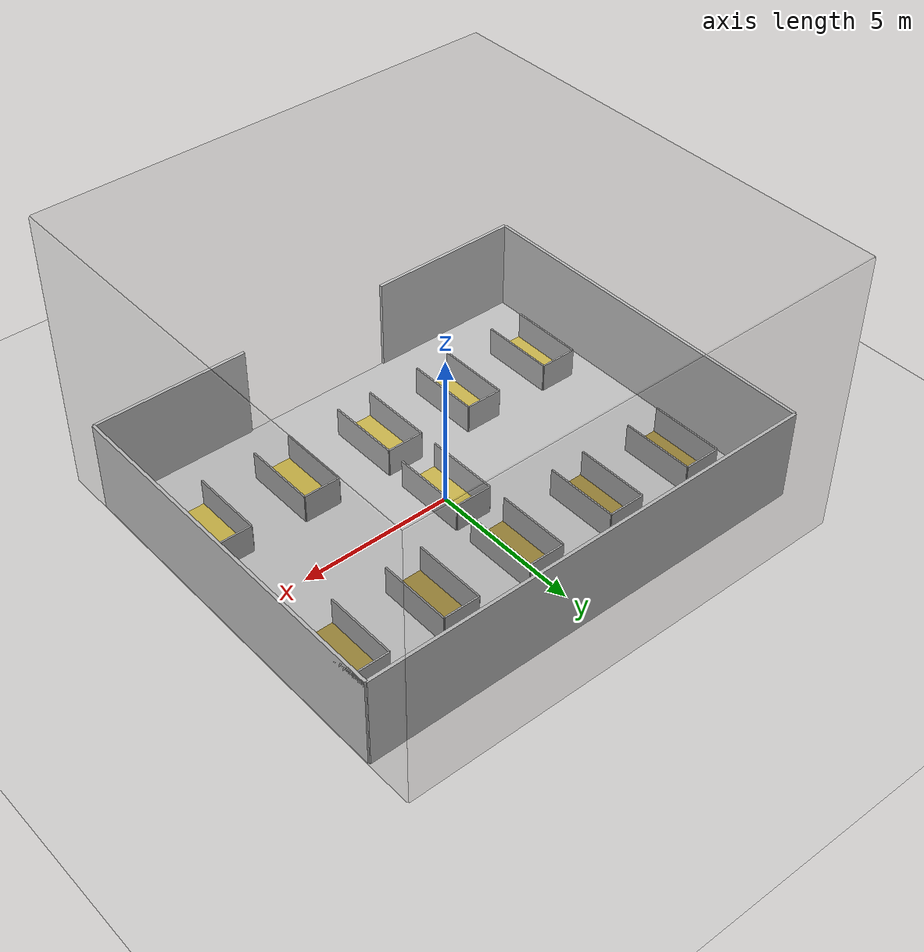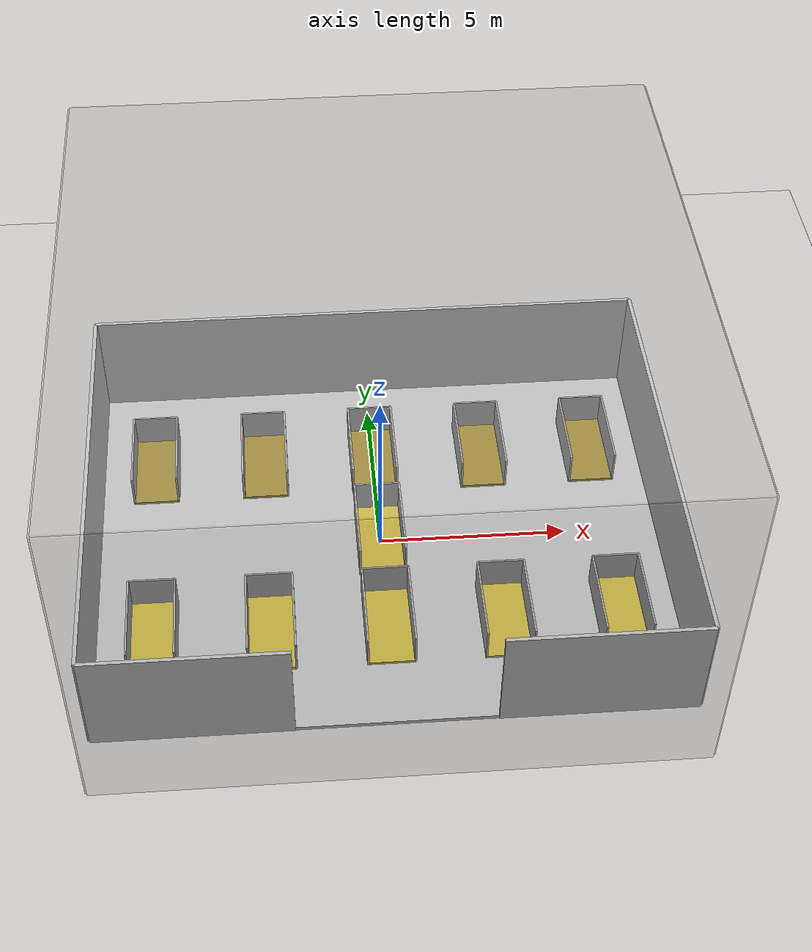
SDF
<?xml version="1.0" ?>
<sdf version="1.8">
  <world name="default">
    <!-- Basic settings and plugins -->
        <physics name="1ms" type="ignored">
            <max_step_size>0.001</max_step_size>
            <real_time_factor>1.0</real_time_factor>

        </physics>
        <plugin
        filename="gz-sim-buoyancy-system"
        name="gz::sim::systems::Buoyancy">
        <uniform_fluid_density>0</uniform_fluid_density>
        </plugin>

        <plugin
            filename="gz-sim-physics-system"
            name="gz::sim::systems::Physics">
        </plugin>
        <plugin
            filename="gz-sim-user-commands-system"
            name="gz::sim::systems::UserCommands">
        </plugin>
        <plugin
            filename="gz-sim-scene-broadcaster-system"
            name="gz::sim::systems::SceneBroadcaster">
        </plugin>
        <plugin
            filename="gz-sim-imu-system"
            name="gz::sim::systems::Imu">
        </plugin>
        <plugin
            filename="gz-sim-sensors-system"
            name="gz::sim::systems::Sensors">
            <render_engine>ogre2</render_engine>
        </plugin>

        <plugin
            filename="gz-sim-buoyancy-system"
            name="gz::sim::systems::Buoyancy">
            <uniform_fluid_density>0</uniform_fluid_density>
        </plugin>
          <plugin
            filename="gz-sim-particle-emitter-system"
            name="gz::sim::systems::ParticleEmitter">
          </plugin>

        <plugin
            filename="gz-sim-contact-system"
            name="gz::sim::systems::Contact">
        </plugin>

        <gui fullscreen="0">

          <!-- 3D scene -->
          <plugin filename="MinimalScene" name="3D View">
            <gz-gui>
              <title>3D View</title>
              <property type="bool" key="showTitleBar">false</property>
              <property type="string" key="state">docked</property>
            </gz-gui>

            <engine>ogre2</engine>
            <scene>scene</scene>
            <ambient_light>0.4 0.4 0.4</ambient_light>
            <background_color>0.8 0.8 0.8</background_color>
            <camera_pose>-6 0 6 0 0.5 0</camera_pose>
            <camera_clip>
              <near>0.25</near>
              <far>25000</far>
            </camera_clip>
          </plugin>

          <!-- Plugins that add functionality to the scene -->
          <plugin filename="EntityContextMenuPlugin" name="Entity context menu">
            <gz-gui>
              <property key="state" type="string">floating</property>
              <property key="width" type="double">5</property>
              <property key="height" type="double">5</property>
              <property key="showTitleBar" type="bool">false</property>
            </gz-gui>
          </plugin>
          <plugin filename="GzSceneManager" name="Scene Manager">
            <gz-gui>
              <property key="resizable" type="bool">false</property>
              <property key="width" type="double">5</property>
              <property key="height" type="double">5</property>
              <property key="state" type="string">floating</property>
              <property key="showTitleBar" type="bool">false</property>
            </gz-gui>
          </plugin>
          <plugin filename="InteractiveViewControl" name="Interactive view control">
            <gz-gui>
              <property key="resizable" type="bool">false</property>
              <property key="width" type="double">5</property>
              <property key="height" type="double">5</property>
              <property key="state" type="string">floating</property>
              <property key="showTitleBar" type="bool">false</property>
            </gz-gui>
          </plugin>
          <plugin filename="CameraTracking" name="Camera Tracking">
            <gz-gui>
              <property key="resizable" type="bool">false</property>
              <property key="width" type="double">5</property>
              <property key="height" type="double">5</property>
              <property key="state" type="string">floating</property>
              <property key="showTitleBar" type="bool">false</property>
            </gz-gui>
          </plugin>
          <plugin filename="MarkerManager" name="Marker manager">
            <gz-gui>
              <property key="resizable" type="bool">false</property>
              <property key="width" type="double">5</property>
              <property key="height" type="double">5</property>
              <property key="state" type="string">floating</property>
              <property key="showTitleBar" type="bool">false</property>
            </gz-gui>
          </plugin>
          <plugin filename="SelectEntities" name="Select Entities">
            <gz-gui>
              <anchors target="Select entities">
                <line own="right" target="right"/>
                <line own="top" target="top"/>
              </anchors>
              <property key="resizable" type="bool">false</property>
              <property key="width" type="double">5</property>
              <property key="height" type="double">5</property>
              <property key="state" type="string">floating</property>
              <property key="showTitleBar" type="bool">false</property>
            </gz-gui>
          </plugin>
          <plugin filename="VisualizationCapabilities" name="Visualization Capabilities">
            <gz-gui>
              <property key="resizable" type="bool">false</property>
              <property key="width" type="double">5</property>
              <property key="height" type="double">5</property>
              <property key="state" type="string">floating</property>
              <property key="showTitleBar" type="bool">false</property>
            </gz-gui>
          </plugin>

          <plugin filename="Spawn" name="Spawn Entities">
            <gz-gui>
              <anchors target="Select entities">
                <line own="right" target="right"/>
                <line own="top" target="top"/>
              </anchors>
              <property key="resizable" type="bool">false</property>
              <property key="width" type="double">5</property>
              <property key="height" type="double">5</property>
              <property key="state" type="string">floating</property>
              <property key="showTitleBar" type="bool">false</property>
            </gz-gui>
          </plugin>

          <!-- World control -->
          <plugin filename="WorldControl" name="World control">
            <gz-gui>
              <title>World control</title>
              <property type="bool" key="showTitleBar">false</property>
              <property type="bool" key="resizable">false</property>
              <property type="double" key="height">72</property>
              <property type="double" key="width">121</property>
              <property type="double" key="z">1</property>

              <property type="string" key="state">floating</property>
              <anchors target="3D View">
                <line own="left" target="left"/>
                <line own="bottom" target="bottom"/>
              </anchors>
            </gz-gui>

            <play_pause>true</play_pause>
            <step>true</step>
            <start_paused>true</start_paused>
            <use_event>true</use_event>

          </plugin>

          <!-- World statistics -->
          <plugin filename="WorldStats" name="World stats">
            <gz-gui>
              <title>World stats</title>
              <property type="bool" key="showTitleBar">false</property>
              <property type="bool" key="resizable">false</property>
              <property type="double" key="height">110</property>
              <property type="double" key="width">290</property>
              <property type="double" key="z">1</property>

              <property type="string" key="state">floating</property>
              <anchors target="3D View">
                <line own="right" target="right"/>
                <line own="bottom" target="bottom"/>
              </anchors>
            </gz-gui>

            <sim_time>true</sim_time>
            <real_time>true</real_time>
            <real_time_factor>true</real_time_factor>
            <iterations>true</iterations>
          </plugin>

          <!-- Insert simple shapes -->
          <plugin filename="Shapes" name="Shapes">
            <gz-gui>
              <property key="resizable" type="bool">false</property>
              <property key="x" type="double">0</property>
              <property key="y" type="double">0</property>
              <property key="width" type="double">250</property>
              <property key="height" type="double">50</property>
              <property key="state" type="string">floating</property>
              <property key="showTitleBar" type="bool">false</property>
              <property key="cardBackground" type="string">#666666</property>
            </gz-gui>
          </plugin>

          <!-- Insert lights -->
          <plugin filename="Lights" name="Lights">
            <gz-gui>
              <property key="resizable" type="bool">false</property>
              <property key="x" type="double">250</property>
              <property key="y" type="double">0</property>
              <property key="width" type="double">150</property>
              <property key="height" type="double">50</property>
              <property key="state" type="string">floating</property>
              <property key="showTitleBar" type="bool">false</property>
              <property key="cardBackground" type="string">#666666</property>
            </gz-gui>
          </plugin>

          <!-- Translate / rotate -->
          <plugin filename="TransformControl" name="Transform control">
            <gz-gui>
              <property key="resizable" type="bool">false</property>
              <property key="x" type="double">0</property>
              <property key="y" type="double">50</property>
              <property key="width" type="double">250</property>
              <property key="height" type="double">50</property>
              <property key="state" type="string">floating</property>
              <property key="showTitleBar" type="bool">false</property>
              <property key="cardBackground" type="string">#777777</property>
            </gz-gui>
          </plugin>

          <!-- Inspector -->
          <plugin filename="ComponentInspector" name="Component inspector">
            <gz-gui>
              <property type="string" key="state">docked_collapsed</property>
            </gz-gui>
          </plugin>

          <!-- View angle -->
          <plugin filename="ViewAngle" name="View angle">
            <gz-gui>
              <property type="string" key="state">docked_collapsed</property>
            </gz-gui>
          </plugin>

            <!-- KeyPublisher plugin-->
            <plugin filename="KeyPublisher" name="Key Publisher"/>

        </gui>

        <!-- Lighting -->
        <light type="directional" name="sun">
            <cast_shadows>true</cast_shadows>
            <pose>0 0 10 0 0 0</pose>
            <diffuse>0.8 0.8 0.8 1</diffuse>
            <specular>0.2 0.2 0.2 1</specular>
            <attenuation>
                <range>1000</range>
                <constant>0.9</constant>
                <linear>0.01</linear>
                <quadratic>0.001</quadratic>
            </attenuation>
            <direction>-0.5 0.1 -0.9</direction>
        </light>

        <!-- Ground Plane -->
        <model name="ground_plane">
            <static>true</static>
            <link name="link">
                <collision name="collision">
                <geometry>
                    <plane>
                    <normal>0 0 1</normal>
                    </plane>
                </geometry>
                </collision>
                <visual name="visual">
                <geometry>
                    <plane>
                    <normal>0 0 1</normal>
                    <size>100 100</size>
                    </plane>
                </geometry>
                <material>
                    <ambient>0.8 0.8 0.8 1</ambient>
                    <diffuse>0.8 0.8 0.8 1</diffuse>
                    <specular>0.8 0.8 0.8 1</specular>
                </material>
                </visual>
            </link>
        </model>

        <!--WORLD BOUNDARIES-->

    <model name='boundary1'>
        <pose>0 7.5 1.5 0 0 0</pose> <!-- Top wall -->
        <static>true</static>
        <link name='body'>
            <visual name='body_visual'>
            <geometry>
                <box>
                <size>15 0.1 15</size> <!-- No change in size -->
                </box>
            </geometry>
            <material>
                <ambient>1 0.9 0.9 0.2</ambient>
                <diffuse>0.5 0.5 0.5 0.2</diffuse>
            </material>
            </visual>
            <collision name='body_collision'>
            <geometry>
                <box>
                <size>15 0.1 4</size> <!-- Ensure the size matches the visual -->
                </box>
            </geometry>
            </collision>
        </link>
        </model>
    <model name='boundary2'>
        <pose>0 -7.5 1.5 0 0 0</pose> <!-- Bottom wall -->
        <static>true</static>
        <link name='body'>
            <visual name='body_visual'>
            <geometry>
                <box>
                <size>15 0.1 15</size> <!-- No change in size -->
                </box>
            </geometry>
            <material>
                <ambient>1 0.9 0.9 0.2</ambient>
                <diffuse>0.5 0.5 0.5 0.2</diffuse>
            </material>
            </visual>
            <collision name='body_collision'>
            <geometry>
                <box>
                <size>15 0.1 4</size> <!-- Ensure the size matches the visual -->
                </box>
            </geometry>
            </collision>
        </link>
    </model>
    <model name='boundary3'>
        <pose>7.5 0 1.5 0 0 0</pose> <!-- Right wall (move further right) -->
        <static>true</static>
        <link name='body'>
            <visual name='body_visual'>
            <geometry>
                <box>
                <size>0.1 15 15</size>
                </box>
            </geometry>
            <material>
                <ambient>1 0.9 0.9 0.2</ambient>
                <diffuse>0.5 0.5 0.5 0.2</diffuse>
            </material>
            </visual>
            <collision name='body_collision'>
            <geometry>
                <box>
                <size>0.1 10 4</size>
                </box>
            </geometry>
            </collision>
        </link>
        </model>
    <model name='boundary4'>
        <pose>-7.5 0 1.5 0 0 0</pose> <!-- Left wall (move further left) -->
        <static>true</static>
        <link name='body'>
            <visual name='body_visual'>
            <geometry>
                <box>
                <size>0.1 15 15</size>
                </box>
            </geometry>
            <material>
                <ambient>1 0.9 0.9 0.2</ambient>
                <diffuse>0.5 0.5 0.5 0.2</diffuse>
            </material>
            </visual>
            <collision name='body_collision'>
            <geometry>
                <box>
                <size>0.1 10 4</size>
                </box>
            </geometry>
            </collision>
        </link>
    </model>

    <model name='ceiling'>
        <pose>0 0 9 0 0 0</pose> <!-- Position the ceiling above the walls -->
        <static>true</static>
        <link name='body'>
            <visual name='body_visual'>
            <geometry>
                <box>
                <size>15 15 0.1</size> <!-- Dimensions of the ceiling -->
                </box>
            </geometry>
            <material>
                <ambient>1 0.9 0.9 0.2</ambient>
                <diffuse>0.5 0.5 0.5 0.2</diffuse>
            </material>
            </visual>
            <collision name='body_collision'>
            <geometry>
                <box>
                <size>15 15 0.1</size> <!-- Ensure collision matches the visual -->
                </box>
            </geometry>
            </collision>
        </link>
    </model>

        <!--WORLD OBJECTS-->

    <!-- =========================
         Barn model (very simple)
         ========================= -->
    <model name="barn">
      <static>true</static>

      <!-- Barn floor: 15m x 12m concrete slab -->
      <link name="floor">
        <pose>0 0 0 0 0 0</pose>
        <collision name="floor_coll">
          <geometry>
            <box><size>15 12 0.1</size></box>
          </geometry>
          <surface>
            <friction>
              <ode>
                <mu>1.0</mu>
                <mu2>1.0</mu2>
              </ode>
            </friction>
          </surface>
        </collision>
        <visual name="floor_vis">
          <geometry>
            <box><size>15 12 0.1</size></box>
          </geometry>
          <material>
            <ambient>0.8 0.8 0.8 1</ambient>
            <diffuse>0.8 0.8 0.8 1</diffuse>
            <specular>0.1 0.1 0.1 1</specular>
            <emissive>0 0 0 1</emissive>
          </material>
        </visual>
      </link>

      <!-- Four simple walls (open ends for ventilation) -->
      <!-- West wall -->
      <link name="wall_w">
        <pose>-7.5 0 1.5 0 0 0</pose>
        <collision name="c">
          <geometry><box><size>0.1 12 3</size></box></geometry>
        </collision>
        <visual name="v">
          <geometry><box><size>0.1 12 3</size></box></geometry>
          <material>
            <ambient>0.8 0.8 0.8 1</ambient>
            <diffuse>0.8 0.8 0.8 1</diffuse>
            <specular>0.1 0.1 0.1 1</specular>
            <emissive>0 0 0 1</emissive>
          </material>
        </visual>
      </link>
      <!-- East wall -->
      <link name="wall_e">
        <pose>7.5 0 1.5 0 0 0</pose>
        <collision name="c">
          <geometry><box><size>0.1 12 3</size></box></geometry>
        </collision>
        <visual name="v">
          <geometry><box><size>0.1 12 3</size></box></geometry>
          <material>
            <ambient>0.8 0.8 0.8 1</ambient>
            <diffuse>0.8 0.8 0.8 1</diffuse>
            <specular>0.1 0.1 0.1 1</specular>
            <emissive>0 0 0 1</emissive>
          </material>
        </visual>
      </link>
      <!-- South wall with a large doorway gap (~5m) -->
      <model name="south_wall">
        <static>true</static>
        <!-- Left segment -->
        <link name="sw_left">
          <pose>-5  -6 1.5 0 0 0</pose>
          <collision name="c">
            <geometry><box><size>5 0.1 3</size></box></geometry>
          </collision>
          <visual name="v">
            <geometry><box><size>5 0.1 3</size></box></geometry>
            <material>
              <ambient>0.8 0.8 0.8 1</ambient>
              <diffuse>0.8 0.8 0.8 1</diffuse>
              <specular>0.1 0.1 0.1 1</specular>
              <emissive>0 0 0 1</emissive>
            </material>
          </visual>
        </link>
        <!-- Right segment -->
        <link name="sw_right">
          <pose> 5  -6 1.5 0 0 0</pose>
          <collision name="c">
            <geometry><box><size>5 0.1 3</size></box></geometry>
          </collision>
          <visual name="v">
            <geometry><box><size>5 0.1 3</size></box></geometry>
            <material>
              <ambient>0.8 0.8 0.8 1</ambient>
              <diffuse>0.8 0.8 0.8 1</diffuse>
              <specular>0.1 0.1 0.1 1</specular>
              <emissive>0 0 0 1</emissive>
            </material>
          </visual>
        </link>
      </model>
      <!-- North wall solid -->
      <link name="wall_n">
        <pose>0 6 1.5 0 0 0</pose>
        <collision name="c">
          <geometry><box><size>15 0.1 3</size></box></geometry>
        </collision>
        <visual name="v">
          <geometry><box><size>15 0.1 3</size></box></geometry>
          <material>
              <ambient>0.8 0.8 0.8 1</ambient>
              <diffuse>0.8 0.8 0.8 1</diffuse>
              <specular>0.1 0.1 0.1 1</specular>
              <emissive>0 0 0 1</emissive>
            </material>
        </visual>
      </link>

      <!-- Simple gable roof (two thin plates) -->
    </model>

    <!-- =========================================
         A reusable cubicle "module"
         size ~ 1.2m x 2.4m, with side rails and bedding
         ========================================= -->
    <!-- Dry hay material (yellowish) -->
    <light name="indoor_fill" type="point">
      <pose>0 0 3.2 0 0 0</pose>
      <diffuse>0.9 0.9 0.9 1</diffuse>
      <attenuation>
        <range>20</range>
        <constant>0.9</constant>
        <linear>0.01</linear>
        <quadratic>0.001</quadratic>
      </attenuation>
    </light>

    <!-- Helper: one dry cubicle at a given pose -->
    <model name="cubicle_template_dry">
      <static>true</static>
      <pose>0 0 0 0 0 0</pose>

      <!-- bedding pad -->
      <link name="bedding">
        <pose>0 0 0.06 0 0 0</pose>
        <collision name="coll">
          <geometry><box><size>1.2 2.4 0.12</size></box></geometry>
          <surface>
            <friction>
              <ode>
                <!-- illustrative friction; tune for your use -->
                <mu>0.8</mu>
                <mu2>0.8</mu2>
              </ode>
            </friction>
          </surface>
        </collision>
        <visual name="vis">
          <geometry><box><size>1.2 2.4 0.12</size></box></geometry>
          <material>
            <ambient>0.85 0.75 0.25 1</ambient>
            <diffuse>0.85 0.75 0.25 1</diffuse>
          </material>
        </visual>
      </link>

      <!-- side rails -->
      <link name="rail_left">
        <pose>-0.6 0 0.5 0 0 0</pose>
        <collision name="c">
          <geometry><box><size>0.05 2.4 1.0</size></box></geometry>
        </collision>
        <visual name="v">
          <geometry><box><size>0.05 2.4 1.0</size></box></geometry>
        </visual>
      </link>
      <link name="rail_right">
        <pose>0.6 0 0.5 0 0 0</pose>
        <collision name="c">
          <geometry><box><size>0.05 2.4 1.0</size></box></geometry>
        </collision>
        <visual name="v">
          <geometry><box><size>0.05 2.4 1.0</size></box></geometry>
        </visual>
      </link>
      <!-- headboard -->
      <link name="rail_head">
        <pose>0 1.2 0.5 0 0 0</pose>
        <collision name="c">
          <geometry><box><size>1.2 0.05 1.0</size></box></geometry>
        </collision>
        <visual name="v">
          <geometry><box><size>1.2 0.05 1.0</size></box></geometry>
        </visual>
      </link>
    </model>

    <!-- Moist hay variant (slightly darker and (illustratively) different friction) -->
    <model name="cubicle_template_moist">
      <static>true</static>
      <pose>0 0 0 0 0 0</pose>

      <link name="bedding">
        <pose>0 0 0.06 0 0 0</pose>
        <collision name="coll">
          <geometry><box><size>1.2 2.4 0.12</size></box></geometry>
          <surface>
            <friction>
              <ode>
                <!-- illustrative friction; tune as needed -->
                <mu>0.9</mu>
                <mu2>0.9</mu2>
              </ode>
            </friction>
          </surface>
        </collision>
        <visual name="vis">
          <geometry><box><size>1.2 2.4 0.12</size></box></geometry>
          <material>
            <ambient>0.65 0.55 0.20 1</ambient>
            <diffuse>0.65 0.55 0.20 1</diffuse>
          </material>
        </visual>
      </link>

      <!-- reuse same rail geometry -->
      <link name="rail_left">
        <pose>-0.6 0 0.5 0 0 0</pose>
        <collision name="c">
          <geometry><box><size>0.05 2.4 1.0</size></box></geometry>
        </collision>
        <visual name="v">
          <geometry><box><size>0.05 2.4 1.0</size></box></geometry>
        </visual>
      </link>
      <link name="rail_right">
        <pose>0.6 0 0.5 0 0 0</pose>
        <collision name="c">
          <geometry><box><size>0.05 2.4 1.0</size></box></geometry>
        </collision>
        <visual name="v">
          <geometry><box><size>0.05 2.4 1.0</size></box></geometry>
        </visual>
      </link>
      <link name="rail_head">
        <pose>0 1.2 0.5 0 0 0</pose>
        <collision name="c">
          <geometry><box><size>1.2 0.05 1.0</size></box></geometry>
        </collision>
        <visual name="v">
          <geometry><box><size>1.2 0.05 1.0</size></box></geometry>
        </visual>
      </link>
    </model>

    <!-- =========================
         Place 10 cubicles:
         Left row (Y=-3): 5 x DRY (CLEAN)
         Right row (Y=+3): 5 x MOIST (DIRTY)
         ========================= -->
    <!-- Left row: X = -6, -3, 0, 3, 6 -->
    <model name="cubicle_dry_1"><static>true</static><pose>-6 -3 0 0 0 0</pose>  <!-- copy of template -->
      <link name="bedding"><pose>0 0 0.06 0 0 0</pose><collision name="c"><geometry><box><size>1.2 2.4 0.12</size></box></geometry><surface><friction><ode><mu>0.8</mu><mu2>0.8</mu2></ode></friction></surface></collision><visual name="v"><geometry><box><size>1.2 2.4 0.12</size></box></geometry><material><ambient>0.85 0.75 0.25 1</ambient><diffuse>0.85 0.75 0.25 1</diffuse></material></visual></link>
      <link name="rail_left"><pose>-0.6 0 0.5 0 0 0</pose><collision name="c"><geometry><box><size>0.05 2.4 1.0</size></box></geometry></collision><visual name="v"><geometry><box><size>0.05 2.4 1.0</size></box></geometry></visual></link>
      <link name="rail_right"><pose>0.6 0 0.5 0 0 0</pose><collision name="c"><geometry><box><size>0.05 2.4 1.0</size></box></geometry></collision><visual name="v"><geometry><box><size>0.05 2.4 1.0</size></box></geometry></visual></link>
      <link name="rail_head"><pose>0 1.2 0.5 0 0 0</pose><collision name="c"><geometry><box><size>1.2 0.05 1.0</size></box></geometry></collision><visual name="v"><geometry><box><size>1.2 0.05 1.0</size></box></geometry></visual></link>
    </model>
    <model name="cubicle_dry_2"><static>true</static><pose>-3 -3 0 0 0 0</pose>  <!-- identical geometry -->
      <link name="bedding"><pose>0 0 0.06 0 0 0</pose><collision name="c"><geometry><box><size>1.2 2.4 0.12</size></box></geometry><surface><friction><ode><mu>0.8</mu><mu2>0.8</mu2></ode></friction></surface></collision><visual name="v"><geometry><box><size>1.2 2.4 0.12</size></box></geometry><material><ambient>0.85 0.75 0.25 1</ambient><diffuse>0.85 0.75 0.25 1</diffuse></material></visual></link>
      <link name="rail_left"><pose>-0.6 0 0.5 0 0 0</pose><collision name="c"><geometry><box><size>0.05 2.4 1.0</size></box></geometry></collision><visual name="v"><geometry><box><size>0.05 2.4 1.0</size></box></geometry></visual></link>
      <link name="rail_right"><pose>0.6 0 0.5 0 0 0</pose><collision name="c"><geometry><box><size>0.05 2.4 1.0</size></box></geometry></collision><visual name="v"><geometry><box><size>0.05 2.4 1.0</size></box></geometry></visual></link>
      <link name="rail_head"><pose>0 1.2 0.5 0 0 0</pose><collision name="c"><geometry><box><size>1.2 0.05 1.0</size></box></geometry></collision><visual name="v"><geometry><box><size>1.2 0.05 1.0</size></box></geometry></visual></link>
    </model>
    <model name="cubicle_dry_3"><static>true</static><pose>0 -3 0 0 0 0</pose>   <!-- same -->
      <link name="bedding"><pose>0 0 0.06 0 0 0</pose><collision name="c"><geometry><box><size>1.2 2.4 0.12</size></box></geometry><surface><friction><ode><mu>0.8</mu><mu2>0.8</mu2></ode></friction></surface></collision><visual name="v"><geometry><box><size>1.2 2.4 0.12</size></box></geometry><material><ambient>0.85 0.75 0.25 1</ambient><diffuse>0.85 0.75 0.25 1</diffuse></material></visual></link>
      <link name="rail_left"><pose>-0.6 0 0.5 0 0 0</pose><collision name="c"><geometry><box><size>0.05 2.4 1.0</size></box></geometry></collision><visual name="v"><geometry><box><size>0.05 2.4 1.0</size></box></geometry></visual></link>
      <link name="rail_right"><pose>0.6 0 0.5 0 0 0</pose><collision name="c"><geometry><box><size>0.05 2.4 1.0</size></box></geometry></collision><visual name="v"><geometry><box><size>0.05 2.4 1.0</size></box></geometry></visual></link>
      <link name="rail_head"><pose>0 1.2 0.5 0 0 0</pose><collision name="c"><geometry><box><size>1.2 0.05 1.0</size></box></geometry></collision><visual name="v"><geometry><box><size>1.2 0.05 1.0</size></box></geometry></visual></link>
    </model>
    <model name="cubicle_dry_4"><static>true</static><pose>3 -3 0 0 0 0</pose>   <!-- same -->
      <link name="bedding"><pose>0 0 0.06 0 0 0</pose><collision name="c"><geometry><box><size>1.2 2.4 0.12</size></box></geometry><surface><friction><ode><mu>0.8</mu><mu2>0.8</mu2></ode></friction></surface></collision><visual name="v"><geometry><box><size>1.2 2.4 0.12</size></box></geometry><material><ambient>0.85 0.75 0.25 1</ambient><diffuse>0.85 0.75 0.25 1</diffuse></material></visual></link>
      <link name="rail_left"><pose>-0.6 0 0.5 0 0 0</pose><collision name="c"><geometry><box><size>0.05 2.4 1.0</size></box></geometry></collision><visual name="v"><geometry><box><size>0.05 2.4 1.0</size></box></geometry></visual></link>
      <link name="rail_right"><pose>0.6 0 0.5 0 0 0</pose><collision name="c"><geometry><box><size>0.05 2.4 1.0</size></box></geometry></collision><visual name="v"><geometry><box><size>0.05 2.4 1.0</size></box></geometry></visual></link>
      <link name="rail_head"><pose>0 1.2 0.5 0 0 0</pose><collision name="c"><geometry><box><size>1.2 0.05 1.0</size></box></geometry></collision><visual name="v"><geometry><box><size>1.2 0.05 1.0</size></box></geometry></visual></link>
    </model>
    <model name="cubicle_dry_5"><static>true</static><pose>6 -3 0 0 0 0</pose>   <!-- same -->
      <link name="bedding"><pose>0 0 0.06 0 0 0</pose><collision name="c"><geometry><box><size>1.2 2.4 0.12</size></box></geometry><surface><friction><ode><mu>0.8</mu><mu2>0.8</mu2></ode></friction></surface></collision><visual name="v"><geometry><box><size>1.2 2.4 0.12</size></box></geometry><material><ambient>0.85 0.75 0.25 1</ambient><diffuse>0.85 0.75 0.25 1</diffuse></material></visual></link>
      <link name="rail_left"><pose>-0.6 0 0.5 0 0 0</pose><collision name="c"><geometry><box><size>0.05 2.4 1.0</size></box></geometry></collision><visual name="v"><geometry><box><size>0.05 2.4 1.0</size></box></geometry></visual></link>
      <link name="rail_right"><pose>0.6 0 0.5 0 0 0</pose><collision name="c"><geometry><box><size>0.05 2.4 1.0</size></box></geometry></collision><visual name="v"><geometry><box><size>0.05 2.4 1.0</size></box></geometry></visual></link>
      <link name="rail_head"><pose>0 1.2 0.5 0 0 0</pose><collision name="c"><geometry><box><size>1.2 0.05 1.0</size></box></geometry></collision><visual name="v"><geometry><box><size>1.2 0.05 1.0</size></box></geometry></visual></link>
    </model>

    <!-- Right row (moist) -->
    <model name="cubicle_moist_1"><static>true</static><pose>-6 3 0 0 0 0</pose>
      <link name="bedding"><pose>0 0 0.06 0 0 0</pose><collision name="c"><geometry><box><size>1.2 2.4 0.12</size></box></geometry><surface><friction><ode><mu>0.9</mu><mu2>0.9</mu2></ode></friction></surface></collision><visual name="v"><geometry><box><size>1.2 2.4 0.12</size></box></geometry><material><ambient>0.65 0.55 0.20 1</ambient><diffuse>0.65 0.55 0.20 1</diffuse></material></visual></link>
      <link name="rail_left"><pose>-0.6 0 0.5 0 0 0</pose><collision name="c"><geometry><box><size>0.05 2.4 1.0</size></box></geometry></collision><visual name="v"><geometry><box><size>0.05 2.4 1.0</size></box></geometry></visual></link>
      <link name="rail_right"><pose>0.6 0 0.5 0 0 0</pose><collision name="c"><geometry><box><size>0.05 2.4 1.0</size></box></geometry></collision><visual name="v"><geometry><box><size>0.05 2.4 1.0</size></box></geometry></visual></link>
      <link name="rail_head"><pose>0 1.2 0.5 0 0 0</pose><collision name="c"><geometry><box><size>1.2 0.05 1.0</size></box></geometry></collision><visual name="v"><geometry><box><size>1.2 0.05 1.0</size></box></geometry></visual></link>
    </model>
    <model name="cubicle_moist_2"><static>true</static><pose>-3 3 0 0 0 0</pose>   <!-- same geometry -->
      <link name="bedding"><pose>0 0 0.06 0 0 0</pose><collision name="c"><geometry><box><size>1.2 2.4 0.12</size></box></geometry><surface><friction><ode><mu>0.9</mu><mu2>0.9</mu2></ode></friction></surface></collision><visual name="v"><geometry><box><size>1.2 2.4 0.12</size></box></geometry><material><ambient>0.65 0.55 0.20 1</ambient><diffuse>0.65 0.55 0.20 1</diffuse></material></visual></link>
      <link name="rail_left"><pose>-0.6 0 0.5 0 0 0</pose><collision name="c"><geometry><box><size>0.05 2.4 1.0</size></box></geometry></collision><visual name="v"><geometry><box><size>0.05 2.4 1.0</size></box></geometry></visual></link>
      <link name="rail_right"><pose>0.6 0 0.5 0 0 0</pose><collision name="c"><geometry><box><size>0.05 2.4 1.0</size></box></geometry></collision><visual name="v"><geometry><box><size>0.05 2.4 1.0</size></box></geometry></visual></link>
      <link name="rail_head"><pose>0 1.2 0.5 0 0 0</pose><collision name="c"><geometry><box><size>1.2 0.05 1.0</size></box></geometry></collision><visual name="v"><geometry><box><size>1.2 0.05 1.0</size></box></geometry></visual></link>
    </model>
    <model name="cubicle_moist_3"><static>true</static><pose>0 3 0 0 0 0</pose>    <!-- same -->
      <link name="bedding"><pose>0 0 0.06 0 0 0</pose><collision name="c"><geometry><box><size>1.2 2.4 0.12</size></box></geometry><surface><friction><ode><mu>0.9</mu><mu2>0.9</mu2></ode></friction></surface></collision><visual name="v"><geometry><box><size>1.2 2.4 0.12</size></box></geometry><material><ambient>0.65 0.55 0.20 1</ambient><diffuse>0.65 0.55 0.20 1</diffuse></material></visual></link>
      <link name="rail_left"><pose>-0.6 0 0.5 0 0 0</pose><collision name="c"><geometry><box><size>0.05 2.4 1.0</size></box></geometry></collision><visual name="v"><geometry><box><size>0.05 2.4 1.0</size></box></geometry></visual></link>
      <link name="rail_right"><pose>0.6 0 0.5 0 0 0</pose><collision name="c"><geometry><box><size>0.05 2.4 1.0</size></box></geometry></collision><visual name="v"><geometry><box><size>0.05 2.4 1.0</size></box></geometry></visual></link>
      <link name="rail_head"><pose>0 1.2 0.5 0 0 0</pose><collision name="c"><geometry><box><size>1.2 0.05 1.0</size></box></geometry></collision><visual name="v"><geometry><box><size>1.2 0.05 1.0</size></box></geometry></visual></link>
    </model>
    <model name="cubicle_moist_4"><static>true</static><pose>3 3 0 0 0 0</pose>    <!-- same -->
      <link name="bedding"><pose>0 0 0.06 0 0 0</pose><collision name="c"><geometry><box><size>1.2 2.4 0.12</size></box></geometry><surface><friction><ode><mu>0.9</mu><mu2>0.9</mu2></ode></friction></surface></collision><visual name="v"><geometry><box><size>1.2 2.4 0.12</size></box></geometry><material><ambient>0.65 0.55 0.20 1</ambient><diffuse>0.65 0.55 0.20 1</diffuse></material></visual></link>
      <link name="rail_left"><pose>-0.6 0 0.5 0 0 0</pose><collision name="c"><geometry><box><size>0.05 2.4 1.0</size></box></geometry></collision><visual name="v"><geometry><box><size>0.05 2.4 1.0</size></box></geometry></visual></link>
      <link name="rail_right"><pose>0.6 0 0.5 0 0 0</pose><collision name="c"><geometry><box><size>0.05 2.4 1.0</size></box></geometry></collision><visual name="v"><geometry><box><size>0.05 2.4 1.0</size></box></geometry></visual></link>
      <link name="rail_head"><pose>0 1.2 0.5 0 0 0</pose><collision name="c"><geometry><box><size>1.2 0.05 1.0</size></box></geometry></collision><visual name="v"><geometry><box><size>1.2 0.05 1.0</size></box></geometry></visual></link>
    </model>
    <model name="cubicle_moist_5"><static>true</static><pose>6 3 0 0 0 0</pose>    <!-- same -->
      <link name="bedding"><pose>0 0 0.06 0 0 0</pose><collision name="c"><geometry><box><size>1.2 2.4 0.12</size></box></geometry><surface><friction><ode><mu>0.9</mu><mu2>0.9</mu2></ode></friction></surface></collision><visual name="v"><geometry><box><size>1.2 2.4 0.12</size></box></geometry><material><ambient>0.65 0.55 0.20 1</ambient><diffuse>0.65 0.55 0.20 1</diffuse></material></visual></link>
      <link name="rail_left"><pose>-0.6 0 0.5 0 0 0</pose><collision name="c"><geometry><box><size>0.05 2.4 1.0</size></box></geometry></collision><visual name="v"><geometry><box><size>0.05 2.4 1.0</size></box></geometry></visual></link>
      <link name="rail_right"><pose>0.6 0 0.5 0 0 0</pose><collision name="c"><geometry><box><size>0.05 2.4 1.0</size></box></geometry></collision><visual name="v"><geometry><box><size>0.05 2.4 1.0</size></box></geometry></visual></link>
      <link name="rail_head"><pose>0 1.2 0.5 0 0 0</pose><collision name="c"><geometry><box><size>1.2 0.05 1.0</size></box></geometry></collision><visual name="v"><geometry><box><size>1.2 0.05 1.0</size></box></geometry></visual></link>
    </model>

  </world>
</sdf>
